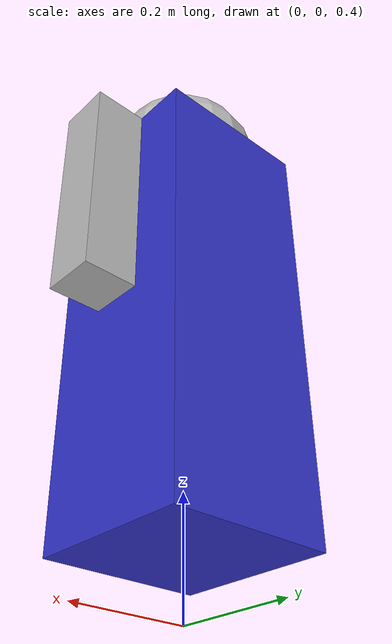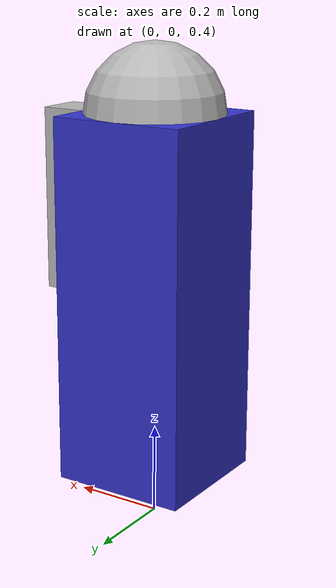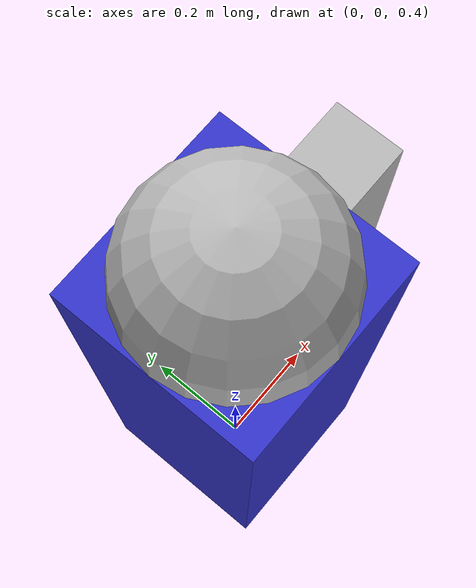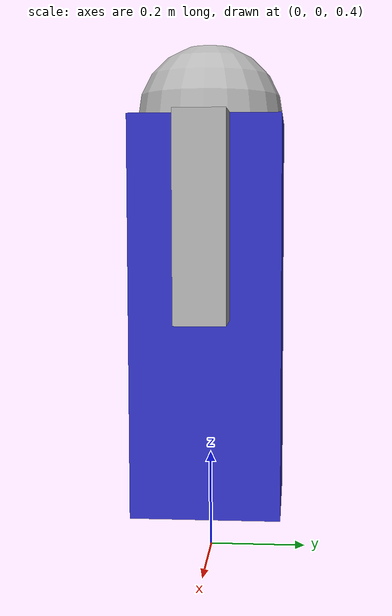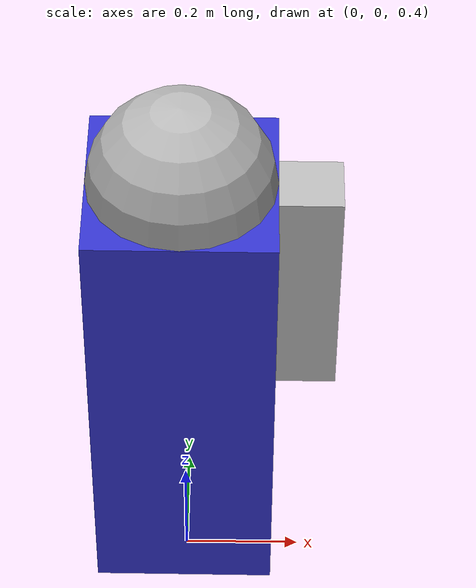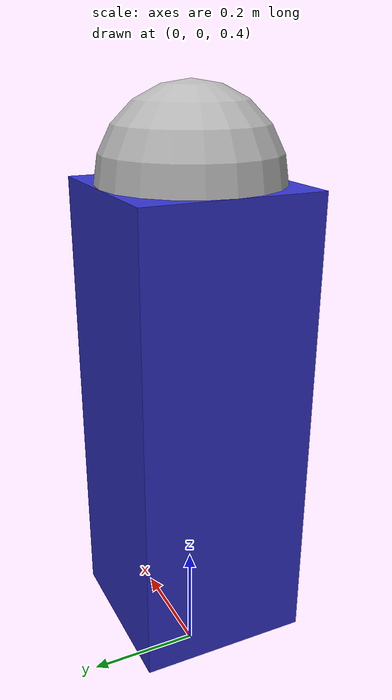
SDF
<?xml version="1.0"?>
<sdf version="1.7">
  <model name="simple_humanoid_capstone">
    <pose>0 0 0.9 0 0 0</pose> <!-- Assume standing upright -->
    <link name="base_link">
      <visual name="visual">
        <geometry><box><size>0.3 0.3 0.8</size></box></geometry>
        <material><ambient>0.2 0.2 0.8 1.0</ambient></material> <!-- Blue humanoid body -->
      </visual>
      <collision name="collision">
        <geometry><box><size>0.3 0.3 0.8</size></box></geometry>
      </collision>
      <inertial>
        <mass>30.0</mass>
        <inertia><ixx>10</ixx><iyy>10</iyy><izz>10</izz></inertia>
      </inertial>
    </link>

    <!-- Placeholder for simple head link with camera sensor -->
    <link name="head_link">
      <pose>0 0 0.4 0 0 0</pose>
      <visual name="visual"><geometry><sphere><radius>0.15</radius></sphere></geometry></visual>
      <collision name="collision"><geometry><sphere><radius>0.15</radius></sphere></geometry></collision>
      <inertial><mass>2.0</mass><inertia><ixx>0.1</ixx><iyy>0.1</iyy><izz>0.1</izz></inertia></inertial>
      <sensor name="rgbd_camera" type="depth_camera">
        <camera>
          <horizontal_fov>1.047</horizontal_fov>
          <image><width>640</width><height>480</height></image>
          <clip><near>0.1</near><far>10</far></clip>
        </camera>
        <plugin name="camera_controller" filename="libgazebo_ros_depth_camera.so">
          <ros><namespace>/humanoid</namespace><argument>image:=rgb_image</argument><argument>depth:=depth_image</argument></ros>
          <frame_name>camera_frame</frame_name>
        </plugin>
      </sensor>
    </link>
    <joint name="base_to_head_joint" type="fixed">
      <parent>base_link</parent><child>head_link</child>
      <origin xyz="0 0 0.4" rpy="0 0 0"/>
    </joint>

    <!-- Placeholder for simple arm link with gripper -->
    <link name="right_arm_link">
        <pose>0.2 0 0.2 0 0 0</pose>
        <visual name="visual"><geometry><box><size>0.1 0.1 0.4</size></box></geometry></visual>
        <collision name="collision"><geometry><box><size>0.1 0.1 0.4</size></box></geometry></collision>
        <inertial><mass>5.0</mass><inertia><ixx>1</ixx><iyy>1</iyy><izz>1</izz></inertia></inertial>
    </link>
    <joint name="base_to_right_arm_joint" type="fixed">
        <parent>base_link</parent><child>right_arm_link</child>
        <origin xyz="0.15 0 0.2" rpy="0 0 0"/>
    </joint>

  </model>
</sdf>
